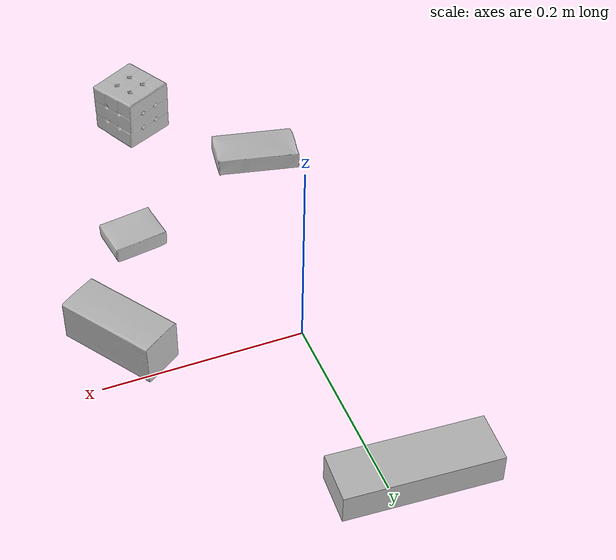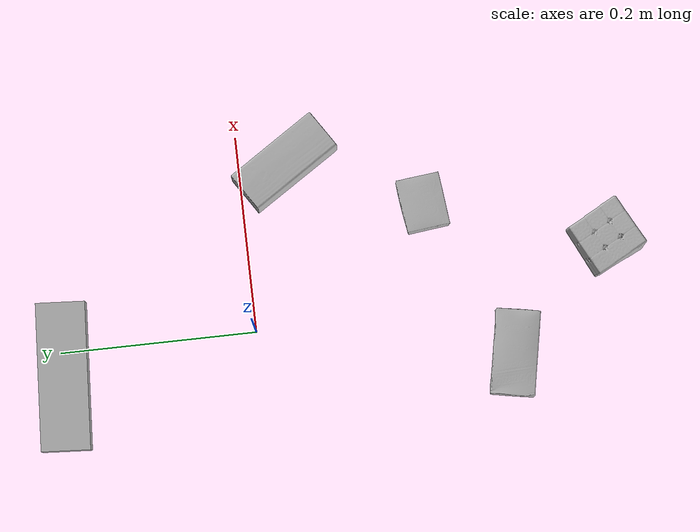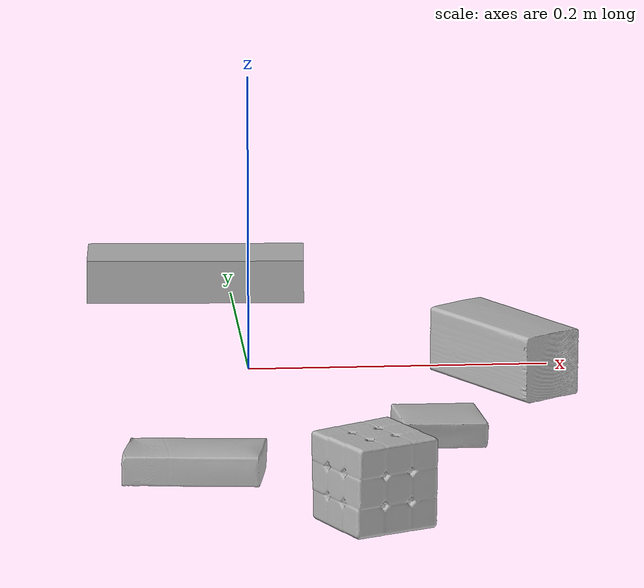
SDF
<sdf version="1.4">
  <world name="default">
    <light name="light1" type="point">
      <pose>0 0 1 0 0 0</pose>
      <diffuse>3 3 3 1</diffuse>
      <specular>3 3 3 1</specular>
    </light>
    <light name="light2" type="point">
      <pose>0 0.5 2 0 0 0</pose>
      <diffuse>1 1 1 1</diffuse>
      <specular>1 1 1 1</specular>
    </light>
    <light name="light3" type="point">
      <pose>0 0.5 2 0 0 0</pose>
      <diffuse>3 3 3 1</diffuse>
      <specular>3 3 3 1</specular>
    </light>
    <scene>
      <ambient>0.7 0.7 0.7</ambient>
    </scene>
    <model name="box1">
      <link name="link_box1">
        <collision name="default">
          <geometry>
            <mesh>
              <uri>model://wood_block/collision_meshes/collision.obj</uri>
              <scale>0.5 0.5 0.5</scale>
            </mesh>
          </geometry>
          <surface>
            <friction>
              <ode>
                <mu>0.5</mu>
                <mu2>0.5</mu2>
              </ode>
            </friction>
          <contact>
        <ode>
            <max_vel>0</max_vel>
            <min_depth>0.0001</min_depth>
            <kp>1e8</kp>
        </ode>
    </contact></surface>
        </collision>
        <visual name="default">
          <geometry>
            <mesh>
              <uri>model://wood_block/visual_meshes/visual.dae</uri>
              <scale>0.5 0.5 0.5</scale>
            </mesh>
          </geometry>
        </visual>
        <inertial>
          <mass>0.21249504387378693</mass>
          <pose>-2.906657528001233e-06 -0.00028540470520965755 0.00013204290007706732 -0.05220867383734612 -0.005192696375656893 -0.006861378651330705</pose>
          <inertia>
            <ixx>7.108762e-05</ixx>
            <iyy>0.00022456584</iyy>
            <izz>0.00022372584</izz>
            <ixy>0</ixy>
            <ixz>0</ixz>
            <iyz>0</iyz>
          </inertia>
        </inertial>
      </link>
      <pose>0.16667857766151428 -0.04678081348538399 0.022629259154200554 -0.005208381768742809 0.005718752855477938 -0.9908718338013844</pose>
    </model>
    <model name="box2">
      <link name="link_box2">
        <collision name="default">
          <geometry>
            <mesh>
              <uri>model://sugar_box/collision_meshes/collision.obj</uri>
              <scale>0.5 0.5 0.5</scale>
            </mesh>
          </geometry>
          <surface>
            <friction>
              <ode>
                <mu>0.5</mu>
                <mu2>0.5</mu2>
              </ode>
            </friction>
          <contact>
        <ode>
            <max_vel>0</max_vel>
            <min_depth>0.0001</min_depth>
            <kp>1e8</kp>
        </ode>
    </contact></surface>
        </collision>
        <visual name="default">
          <geometry>
            <mesh>
              <uri>model://sugar_box/visual_meshes/visual.dae</uri>
              <scale>0.5 0.5 0.5</scale>
            </mesh>
          </geometry>
        </visual>
        <inertial>
          <mass>0.11089310050010681</mass>
          <pose>0.0005171863595023751 1.924554817378521e-05 -0.00018182402709499002 -0.0004046262999979174 0.001050663638672674 0.002615379254561693</pose>
          <inertia>
            <ixx>2.3098954e-05</ixx>
            <iyy>7.4660566e-05</iyy>
            <izz>8.9377616e-05</izz>
            <ixy>0</ixy>
            <ixz>0</ixz>
            <iyz>0</iyz>
          </inertia>
        </inertial>
      </link>
      <pose>-0.04995213821530342 -0.2583461403846741 0.011399302631616592 0.0007748450121956371 -0.023433114473021245 -0.1841750943096413</pose>
    </model>
    <model name="box3">
      <link name="link_box3">
        <collision name="default">
          <geometry>
            <mesh>
              <uri>model://jenga/collision_meshes/collision.obj</uri>
              <scale>1.0 1.0 1.0</scale>
            </mesh>
          </geometry>
          <surface>
            <friction>
              <ode>
                <mu>0.5</mu>
                <mu2>0.5</mu2>
              </ode>
            </friction>
          <contact>
        <ode>
            <max_vel>0</max_vel>
            <min_depth>0.0001</min_depth>
            <kp>1e8</kp>
        </ode>
    </contact></surface>
        </collision>
        <visual name="default">
          <geometry>
            <mesh>
              <uri>model://jenga/visual_meshes/visual.dae</uri>
              <scale>1.0 1.0 1.0</scale>
            </mesh>
          </geometry>
        </visual>
        <inertial>
          <mass>0.163609579205513</mass>
          <pose>-2.502855807051674e-07 -0.0001025000965455547 -4.0923401684267446e-05 0.0 -7.34215461761844e-07 0.0</pose>
          <inertia>
            <ixx>4.527474e-05</ixx>
            <iyy>0.00030678045</iyy>
            <izz>0.0003275142</izz>
            <ixy>0</ixy>
            <ixz>0</ixz>
            <iyz>0</iyz>
          </inertia>
        </inertial>
      </link>
      <pose>-0.024745622649788857 0.1982894241809845 0.014999997802078724 1.1116606578027439e-08 3.1421796310411137e-09 3.079261037651424</pose>
    </model>
    <model name="box4">
      <link name="link_box4">
        <collision name="default">
          <geometry>
            <mesh>
              <uri>model://rubiks_cube/collision_meshes/collision.obj</uri>
              <scale>1.0 1.0 1.0</scale>
            </mesh>
          </geometry>
          <surface>
            <friction>
              <ode>
                <mu>0.5</mu>
                <mu2>0.5</mu2>
              </ode>
            </friction>
          <contact>
        <ode>
            <max_vel>0</max_vel>
            <min_depth>0.0001</min_depth>
            <kp>1e8</kp>
        </ode>
    </contact></surface>
        </collision>
        <visual name="default">
          <geometry>
            <mesh>
              <uri>model://rubiks_cube/visual_meshes/visual.dae</uri>
              <scale>1.0 1.0 1.0</scale>
            </mesh>
          </geometry>
        </visual>
        <inertial>
          <mass>0.25540637969970703</mass>
          <pose>2.6721041649580002e-05 5.2569666877388954e-05 -7.264316082000732e-06 -0.054671713185757496 -0.09814043055608018 -0.034455401135126476</pose>
          <inertia>
            <ixx>0.00014112917</ixx>
            <iyy>0.000140471</iyy>
            <izz>0.00014229867</izz>
            <ixy>0</ixy>
            <ixz>0</ixz>
            <iyz>0</iyz>
          </inertia>
        </inertial>
      </link>
      <pose>0.055630818009376526 -0.36176469922065735 0.028679003939032555 4.837165994142636e-08 1.3592679127171378e-08 -1.0872941091711836</pose>
    </model>
    <model name="box5">
      <link name="link_box5">
        <collision name="default">
          <geometry>
            <mesh>
              <uri>model://pudding_box/collision_meshes/collision.obj</uri>
              <scale>0.5 0.5 0.5</scale>
            </mesh>
          </geometry>
          <surface>
            <friction>
              <ode>
                <mu>0.5</mu>
                <mu2>0.5</mu2>
              </ode>
            </friction>
          <contact>
        <ode>
            <max_vel>0</max_vel>
            <min_depth>0.0001</min_depth>
            <kp>1e8</kp>
        </ode>
    </contact></surface>
        </collision>
        <visual name="default">
          <geometry>
            <mesh>
              <uri>model://pudding_box/visual_meshes/visual.dae</uri>
              <scale>0.5 0.5 0.5</scale>
            </mesh>
          </geometry>
        </visual>
        <inertial>
          <mass>0.04848850890994072</mass>
          <pose>0.00024474109522998333 0.000403394311433658 -0.0002594413817860186 0.0052131017882315455 -0.0066037973363940366 0.020079830752013892</pose>
          <inertia>
            <ixx>1.370344e-05</ixx>
            <iyy>9.219772e-06</iyy>
            <izz>2.023671e-05</izz>
            <ixy>0</ixy>
            <ixz>0</ixz>
            <iyz>0</iyz>
          </inertia>
        </inertial>
      </link>
      <pose>0.11180995404720306 -0.18210262060165405 0.009862905368208885 0.022348502606573974 -0.01139174133604143 1.6847569818106924</pose>
    </model>
  <physics type="ode">
      <max_contacts>50</max_contacts>
      <ode>
        <solver>
          <type>quick</type>
          <iters>75</iters>
        </solver>
        <constraints>
          <contact_max_correcting_vel>0</contact_max_correcting_vel>
          <contact_surface_layer>0</contact_surface_layer>
        </constraints>
      </ode>
    </physics></world>
</sdf>
